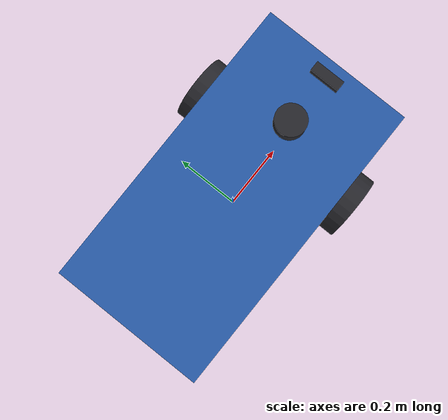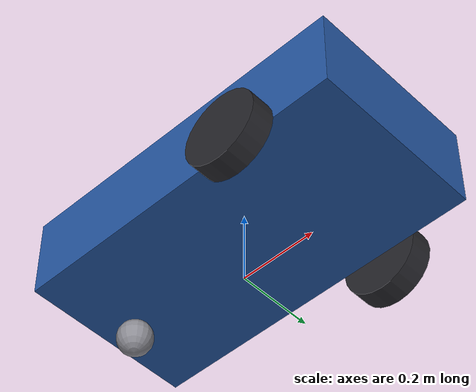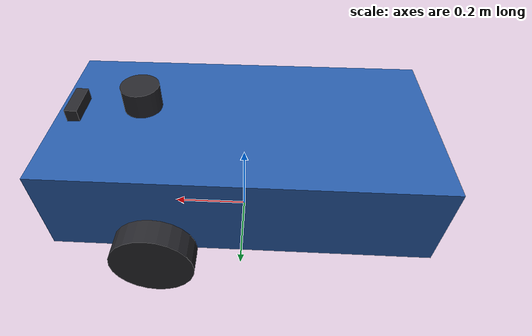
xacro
<?xml version="1.0"?>
<robot name="shuttle" xmlns:xacro="http://www.ros.org/wiki/xacro">

  <xacro:property name="base_length" value="0.90"/>
  <xacro:property name="base_width"  value="0.46"/>
  <xacro:property name="base_height" value="0.22"/>
  <xacro:property name="base_mass"   value="28.0"/>

  <xacro:property name="wheel_radius"     value="0.10"/>
  <xacro:property name="wheel_width"      value="0.06"/>
  <xacro:property name="wheel_mass"       value="1.2"/>
  <xacro:property name="wheel_separation" value="0.52"/>
  <xacro:property name="wheel_xoff"       value="0.20"/>

  <xacro:property name="caster_radius" value="0.045"/>

  <xacro:include filename="$(find shuttle_description)/urdf/shuttle.gazebo.xacro"/>

  <material name="shuttle_blue">
    <color rgba="0.15 0.35 0.65 1.0"/>
  </material>
  <material name="shuttle_dark">
    <color rgba="0.15 0.15 0.17 1.0"/>
  </material>
  <material name="shuttle_grey">
    <color rgba="0.55 0.55 0.58 1.0"/>
  </material>

  <xacro:macro name="box_inertia" params="m x y z">
    <inertial>
      <mass value="${m}"/>
      <inertia
        ixx="${m*(y*y+z*z)/12.0}" ixy="0.0" ixz="0.0"
        iyy="${m*(x*x+z*z)/12.0}" iyz="0.0"
        izz="${m*(x*x+y*y)/12.0}"/>
    </inertial>
  </xacro:macro>

  <xacro:macro name="cylinder_inertia" params="m r h">
    <inertial>
      <mass value="${m}"/>
      <inertia
        ixx="${m*(3*r*r+h*h)/12.0}" ixy="0.0" ixz="0.0"
        iyy="${m*(3*r*r+h*h)/12.0}" iyz="0.0"
        izz="${m*r*r/2.0}"/>
    </inertial>
  </xacro:macro>

  <xacro:macro name="sphere_inertia" params="m r">
    <inertial>
      <mass value="${m}"/>
      <inertia
        ixx="${2.0*m*r*r/5.0}" ixy="0.0" ixz="0.0"
        iyy="${2.0*m*r*r/5.0}" iyz="0.0"
        izz="${2.0*m*r*r/5.0}"/>
    </inertial>
  </xacro:macro>

  <!-- base_footprint sits on the ground plane directly below base_link. -->
  <link name="base_footprint"/>

  <joint name="base_footprint_joint" type="fixed">
    <parent link="base_footprint"/>
    <child link="base_link"/>
    <origin xyz="0 0 ${wheel_radius}" rpy="0 0 0"/>
  </joint>

  <link name="base_link">
    <visual>
      <origin xyz="0 0 ${base_height/2}"/>
      <geometry>
        <box size="${base_length} ${base_width} ${base_height}"/>
      </geometry>
      <material name="shuttle_blue"/>
    </visual>
    <collision>
      <origin xyz="0 0 ${base_height/2}"/>
      <geometry>
        <box size="${base_length} ${base_width} ${base_height}"/>
      </geometry>
    </collision>
    <xacro:box_inertia m="${base_mass}" x="${base_length}" y="${base_width}"
                       z="${base_height}"/>
  </link>

  <xacro:macro name="drive_wheel" params="prefix reflect">
    <link name="${prefix}_wheel_link">
      <visual>
        <origin rpy="${pi/2} 0 0"/>
        <geometry>
          <cylinder radius="${wheel_radius}" length="${wheel_width}"/>
        </geometry>
        <material name="shuttle_dark"/>
      </visual>
      <collision>
        <origin rpy="${pi/2} 0 0"/>
        <geometry>
          <cylinder radius="${wheel_radius}" length="${wheel_width}"/>
        </geometry>
        <surface>
          <friction>
            <ode><mu>1.0</mu><mu2>1.0</mu2></ode>
          </friction>
        </surface>
      </collision>
      <xacro:cylinder_inertia m="${wheel_mass}" r="${wheel_radius}"
                              h="${wheel_width}"/>
    </link>

    <joint name="${prefix}_wheel_joint" type="continuous">
      <parent link="base_link"/>
      <child link="${prefix}_wheel_link"/>
      <origin xyz="${wheel_xoff} ${reflect*wheel_separation/2} 0" rpy="0 0 0"/>
      <axis xyz="0 1 0"/>
      <dynamics damping="0.02" friction="0.02"/>
    </joint>
  </xacro:macro>

  <xacro:drive_wheel prefix="left"  reflect="1"/>
  <xacro:drive_wheel prefix="right" reflect="-1"/>

  <!-- Passive rear caster, modelled as a low-friction sphere. -->
  <link name="caster_link">
    <visual>
      <geometry><sphere radius="${caster_radius}"/></geometry>
      <material name="shuttle_grey"/>
    </visual>
    <collision>
      <geometry><sphere radius="${caster_radius}"/></geometry>
    </collision>
    <xacro:sphere_inertia m="0.4" r="${caster_radius}"/>
  </link>

  <joint name="caster_joint" type="fixed">
    <parent link="base_link"/>
    <child link="caster_link"/>
    <origin xyz="${-base_length/2 + 0.10} 0 ${-wheel_radius + caster_radius}"/>
  </joint>

  <!-- 2D LiDAR on the roof. -->
  <link name="lidar_link">
    <visual>
      <geometry><cylinder radius="0.045" length="0.06"/></geometry>
      <material name="shuttle_dark"/>
    </visual>
    <collision>
      <geometry><cylinder radius="0.045" length="0.06"/></geometry>
    </collision>
    <xacro:cylinder_inertia m="0.20" r="0.045" h="0.06"/>
  </link>

  <joint name="lidar_joint" type="fixed">
    <parent link="base_link"/>
    <child link="lidar_link"/>
    <origin xyz="0.24 0 ${base_height + 0.05}" rpy="0 0 0"/>
  </joint>

  <!-- IMU at the base origin. -->
  <link name="imu_link">
    <xacro:box_inertia m="0.05" x="0.03" y="0.03" z="0.01"/>
  </link>

  <joint name="imu_joint" type="fixed">
    <parent link="base_link"/>
    <child link="imu_link"/>
    <origin xyz="0 0 0.05" rpy="0 0 0"/>
  </joint>

  <!-- Forward-facing RGB camera, the calibration subject. -->
  <link name="camera_link">
    <visual>
      <geometry><box size="0.03 0.09 0.03"/></geometry>
      <material name="shuttle_dark"/>
    </visual>
    <collision>
      <geometry><box size="0.03 0.09 0.03"/></geometry>
    </collision>
    <xacro:box_inertia m="0.12" x="0.03" y="0.09" z="0.03"/>
  </link>

  <joint name="camera_joint" type="fixed">
    <parent link="base_link"/>
    <child link="camera_link"/>
    <origin xyz="0.40 0 ${base_height + 0.02}" rpy="0 0 0"/>
  </joint>

  <link name="camera_optical_frame"/>
  <joint name="camera_optical_joint" type="fixed">
    <parent link="camera_link"/>
    <child link="camera_optical_frame"/>
    <origin xyz="0 0 0" rpy="${-pi/2} 0 ${-pi/2}"/>
  </joint>

  <xacro:shuttle_gazebo
    wheel_separation="${wheel_separation}"
    wheel_radius="${wheel_radius}"/>

</robot>
